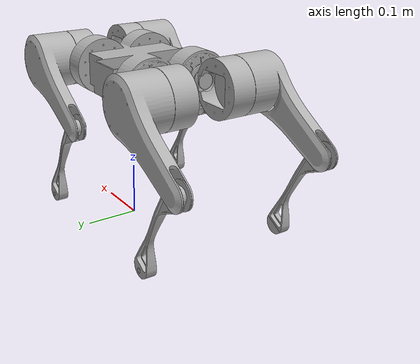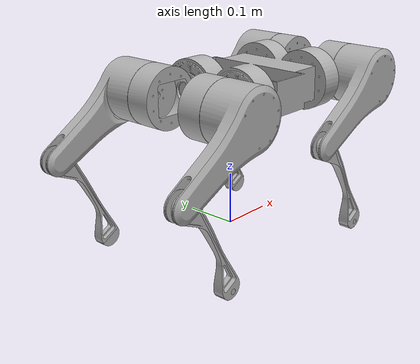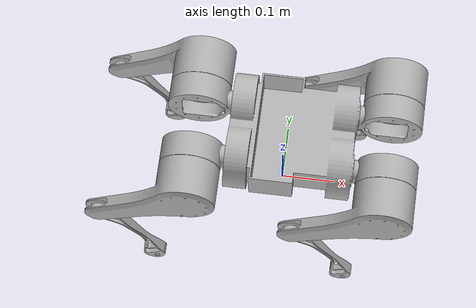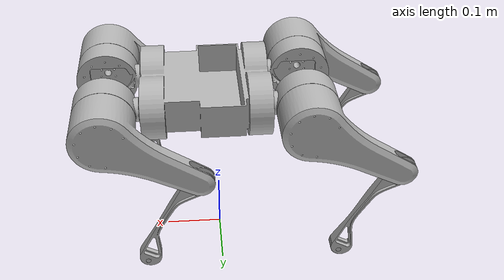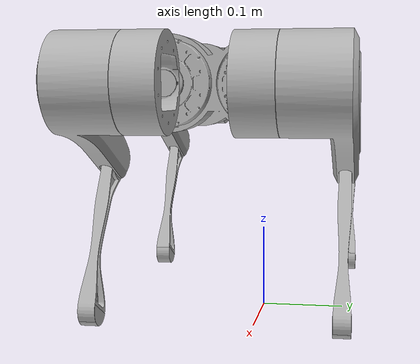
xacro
<?xml version="1.0" ?>
<robot name="vrka" xmlns:xacro="http://www.ros.org/wiki/xacro">

<xacro:include filename="$(find vrka_description)/urdf/materials.xacro" />
<xacro:include filename="$(find vrka_description)/urdf/vrka.trans" />
<xacro:include filename="$(find vrka_description)/urdf/vrka.gazebo" />

<!--BASE LINK-->
<link name="base_link">
  <inertial>
    <origin rpy="0 0 0" xyz="0.01682545300731218 -0.03969312406945759 0.27867633081286985"/>
    <mass value="2.379664751421723"/>
    <inertia ixx="0.011528" ixy="-3.2e-05" ixz="-0.000126" iyy="0.017554" iyz="4e-06" izz="0.024797"/>
  </inertial>
  <visual>
    <origin rpy="0 0 0" xyz="0 0 0"/>
    <geometry>
      <mesh filename="package://vrka_description/meshes/base_link.stl" scale="0.001 0.001 0.001"/>
    </geometry>
    <material name="silver"/>
  </visual>
  <collision>
    <origin rpy="0 0 0" xyz="0 0 0"/>
    <geometry>
      <mesh filename="package://vrka_description/meshes/base_link.stl" scale="0.001 0.001 0.001"/>
    </geometry>
  </collision>
</link>

<!--RIGHT FRONT TIBIA -->

<link name="front_right_lower_leg">
  <inertial>
    <origin rpy="0 0 0" xyz="0.053354897837989246 0.007000373104040586 -0.08200412719516437"/>
    <mass value="0.05278821495344609"/>
    <inertia ixx="0.000281" ixy="-0.0" ixz="0.000153" iyy="0.000374" iyz="0.0" izz="9.5e-05"/>
  </inertial>
  <visual>
    <origin rpy="0 0 0" xyz="-0.035455 0.192045 -0.188584"/>
    <geometry>
      <mesh filename="package://vrka_description/meshes/Right_front_tibia.stl" scale="0.001 0.001 0.001"/>
    </geometry>
    <material name="silver"/>
  </visual>
  <collision>
    <origin rpy="0 0 0" xyz="-0.035455 0.192045 -0.188584"/>
    <geometry>
      <mesh filename="package://vrka_description/meshes/Right_front_tibia.stl" scale="0.001 0.001 0.001"/>
    </geometry>
  </collision>
</link>

<joint name="motor_front_right_lower_leg" type="revolute">
  <origin rpy="0 0 0" xyz="-0.160214 -0.079 -0.0925"/>
  <parent link="front_right_upper_leg"/>
  <child link="front_right_lower_leg"/>
    <limit lower="-0.78" upper="0.78" effort="100" velocity="0.1"/>
  <dynamics damping="0.5"/>
  <axis xyz="0.0 1.0 0.0"/>
</joint>

<!--right front toe-->
<link name="front_right_toe">
  <inertial>
    <origin rpy="0 -2.1 0 " xyz="0.1 0.009  -0.18"/>
    <mass value="0.05278821495344609"/>
    <inertia ixx="4.99e-6" ixy="-0.0" ixz="0.00" iyy="3.99e-6" iyz="0.0" izz="1.99e-6"/>
  </inertial>
  <visual>
    <origin rpy="0 -2.100000 0" xyz="0.11268 -7.955e-3 -0.073584"/>
    <geometry>
      <mesh filename="package://vrka_description/meshes/toe_cap1.stl" scale="0.0001 0.0001 0.0001"/>
    </geometry>
    <material name="silver"/>
  </visual>
  <collision>
    <origin rpy="0 0 0" xyz="0 0 0"/>
    <geometry>
      <mesh filename="package://vrka_description/meshes/toe_cap1.stl" scale="0.0001 0.0001 0.0001"/>
    </geometry>
  </collision>
</link>

<joint name="front_right_leg_foot" type="revolute">
  <origin rpy="0 0 0" xyz="0 0 0"/>
  <parent link="front_right_lower_leg"/>
  <child link="front_right_toe"/>
  <axis xyz="-0.0 1.0 -0.0"/>
    <limit lower="0" upper="0" effort="100" velocity="0.1"/>
  <dynamics damping="0.5"/>
</joint>

<!--RIGHT FRONT FEMUR-->

<link name="front_right_upper_leg">
  <inertial>
    <origin rpy="0 0 0" xyz="-0.02476252170408491 -0.051129281827133444 -0.014293871741900166"/>
    <mass value="1.0856839376243592"/>
    <inertia ixx="0.002714" ixy="-0.000576" ixz="-0.001392" iyy="0.005076" iyz="-0.000333" izz="0.004321"/>
  </inertial>
  <visual>
    <origin rpy="0 0 0" xyz="-0.195669 0.113045 -0.281084"/>
    <geometry>
      <mesh filename="package://vrka_description/meshes/Right_front_femur.stl" scale="0.001 0.001 0.001"/>
    </geometry>
    <material name="silver"/>
  </visual>
  <collision>
    <origin rpy="0 0 0" xyz="-0.195669 0.113045 -0.281084"/>
    <geometry>
      <mesh filename="package://vrka_description/meshes/Right_front_femur.stl" scale="0.001 0.001 0.001"/>
    </geometry>
  </collision>
</link>

<joint name="motor_front_right_upper_leg" type="revolute">
  <origin rpy="0 0 0" xyz="0.055 -0.0185 0.0"/>
  <parent link="front_right_hip"/>
  <child link="front_right_upper_leg"/>
    <limit lower="-0.78" upper="0.78" effort="100" velocity="0.1"/>
  <dynamics damping="0.5"/>
  <axis xyz="0.0 1.0 0.0"/>
</joint>

<!--RIGHT FRONT SHOULDER -->
<link name="front_right_hip">
  <inertial>
    <origin rpy="0 0 0" xyz="0.055238677027354355 -0.003594806404584705 -2.752506777503605e-07"/>
    <mass value="0.29461843575635877"/>
    <inertia ixx="0.000442" ixy="-7e-06" ixz="0.0" iyy="0.000747" iyz="0.0" izz="0.000451"/>
  </inertial>
  <visual>
    <origin rpy="0 0 0" xyz="-0.140669 0.094545 -0.281084"/>
    <geometry>
      <mesh filename="package://vrka_description/meshes/Right_front_shoulder.stl" scale="0.001 0.001 0.001"/>
    </geometry>
    <material name="silver"/>
  </visual>
  <collision>
    <origin rpy="0 0 0" xyz="-0.140669 0.094545 -0.281084"/>
    <geometry>
      <mesh filename="package://vrka_description/meshes/Right_front_shoulder.stl" scale="0.001 0.001 0.001"/>
    </geometry>
  </collision>
</link>

<joint name="motor_front_right_hip" type="revolute">
  <origin rpy="0 0 0" xyz="0.140669 -0.094545 0.281084"/>
  <parent link="base_link"/>
  <child link="front_right_hip"/>
    <limit lower="-0.78" upper="0.78" effort="100" velocity="0.1"/>
  <dynamics damping="0.5"/>
  <axis xyz="1.0 -0.0 0.0"/>
</joint>

<!--LEFT FRONT TIBIA -->
<link name="front_left_lower_leg">
  <inertial>
    <origin rpy="0 0 0" xyz="0.05335571926429739 -0.007000189913617491 -0.08200338753311157"/>
    <mass value="0.052788214953446086"/>
    <inertia ixx="0.000281" ixy="-0.0" ixz="0.000153" iyy="0.000374" iyz="0.0" izz="9.5e-05"/>
  </inertial>
  <visual>
    <origin rpy="0 0 0" xyz="-0.035492 -0.110752 -0.18713"/>
    <geometry>
      <mesh filename="package://vrka_description/meshes/Left_front_tibia.stl" scale="0.001 0.001 0.001"/>
    </geometry>
    <material name="silver"/>
  </visual>
  <collision>
    <origin rpy="0 0 0" xyz="-0.035492 -0.110752 -0.18713"/>
    <geometry>
      <mesh filename="package://vrka_description/meshes/Left_front_tibia.stl" scale="0.001 0.001 0.001"/>
    </geometry>
  </collision>
</link>

<joint name="motor_front_left_lower_leg" type="revolute">
  <origin rpy="0 0 0" xyz="-0.160215 0.079 -0.0925"/>
  <parent link="front_left_upper_leg"/>
  <child link="front_left_lower_leg"/>
    <limit lower="-0.78" upper="0.78" effort="100" velocity="0.1"/>
  <dynamics damping="0.5"/>
  <axis xyz="0.0 -1.0 -0.0"/>
</joint>

<!--Left front toe-->
<link name="front_left_toe">
  <inertial>
    <origin rpy="0 -2.1 0 " xyz="0.1 -5.3e-3  -0.18"/>
    <mass value="0.05278821495344609"/>
    <inertia ixx="4.99e-6" ixy="-0.0" ixz="0.00" iyy="3.99e-6" iyz="0.0" izz="1.99e-6"/>
  </inertial>
  <visual>
    <origin rpy="0 -2.100000 0" xyz="0.11268 -0.02255 -0.073584"/>
    <geometry>
      <mesh filename="package://vrka_description/meshes/toe_cap1.stl" scale="0.0001 0.0001 0.0001"/>
    </geometry>
    <material name="silver"/>
  </visual>
  <collision>
    <origin rpy="0 0 0" xyz="0 0 0"/>
    <geometry>
      <mesh filename="package://vrka_description/meshes/toe_cap1.stl" scale="0.0001 0.0001 0.0001"/>
    </geometry>
  </collision>
</link>

<joint name="front_left_leg_foot" type="revolute">
  <origin rpy="0 0 0" xyz="0 0 0"/>
  <parent link="front_left_lower_leg"/>
  <child link="front_left_toe"/>
  <axis xyz="-0.0 1.0 -0.0"/>
    <limit lower="0" upper="0" effort="100" velocity="0.1"/>
  <dynamics damping="0.5"/>
</joint>

<!--LEFT FRONT FEMUR -->

<link name="front_left_upper_leg">
  <inertial>
    <origin rpy="0 0 0" xyz="-0.02475988057481357 0.05112942909052748 -0.014298015948625065"/>
    <mass value="1.0856839376243592"/>
    <inertia ixx="0.002714" ixy="0.000576" ixz="-0.001391" iyy="0.005076" iyz="0.000333" izz="0.004321"/>
  </inertial>
  <visual>
    <origin rpy="0 0 0" xyz="-0.195707 -0.031752 -0.27963"/>
    <geometry>
      <mesh filename="package://vrka_description/meshes/Left_front_femur.stl" scale="0.001 0.001 0.001"/>
    </geometry>
    <material name="silver"/>
  </visual>
  <collision>
    <origin rpy="0 0 0" xyz="-0.195707 -0.031752 -0.27963"/>
    <geometry>
      <mesh filename="package://vrka_description/meshes/Left_front_femur.stl" scale="0.001 0.001 0.001"/>
    </geometry>
  </collision>
</link>

<joint name="motor_front_left_upper_leg" type="revolute">
  <origin rpy="0 0 0" xyz="0.055 0.0185 0.0"/>
  <parent link="front_left_hip"/>
  <child link="front_left_upper_leg"/>
    <limit lower="-0.78" upper="0.78" effort="100" velocity="0.1"/>
  <dynamics damping="0.5"/>
  <axis xyz="-0.0 -1.0 -0.0"/>
</joint>

<!--LEFT FRONT SHOULDER-->

<link name="front_left_hip">
  <inertial>
    <origin rpy="0 0 0" xyz="0.05523849845367643 0.0035949536679779626 3.663911247731022e-07"/>
    <mass value="0.29461843575635877"/>
    <inertia ixx="0.000442" ixy="7e-06" ixz="-0.0" iyy="0.000747" iyz="0.0" izz="0.000451"/>
  </inertial>
  <visual>
    <origin rpy="0 0 0" xyz="-0.140707 -0.013252 -0.27963"/>
    <geometry>
      <mesh filename="package://vrka_description/meshes/Left_front_shoulder.stl" scale="0.001 0.001 0.001"/>
    </geometry>
    <material name="silver"/>
  </visual>
  <collision>
    <origin rpy="0 0 0" xyz="-0.140707 -0.013252 -0.27963"/>
    <geometry>
      <mesh filename="package://vrka_description/meshes/Left_front_shoulder.stl" scale="0.001 0.001 0.001"/>
    </geometry>
  </collision>
</link>

<joint name="motor_front_left_hip" type="revolute">
  <origin rpy="0 0 0" xyz="0.140707 0.013252 0.27963"/>
  <parent link="base_link"/>
  <child link="front_left_hip"/>
    <limit lower="-0.78" upper="0.78" effort="100" velocity="0.1"/>
  <dynamics damping="0.5"/>
  <axis xyz="1.0 0.0 0.0"/>
</joint>

<!--RIGHT BACK TIBIA-->

<link name="back_right_lower_leg">
  <inertial>
    <origin rpy="0 0 0" xyz="0.05335489783801062 0.0070003731040372275 -0.08200412719516668"/>
    <mass value="0.05278821495344609"/>
    <inertia ixx="0.000281" ixy="-0.0" ixz="0.000153" iyy="0.000374" iyz="0.0" izz="9.5e-05"/>
  </inertial>
  <visual>
    <origin rpy="0 0 0" xyz="0.316183 0.192045 -0.188584"/>
    <geometry>
      <mesh filename="package://vrka_description/meshes/Right_back_tibia.stl" scale="0.001 0.001 0.001"/>
    </geometry>
    <material name="silver"/>
  </visual>
  <collision>
    <origin rpy="0 0 0" xyz="0.316183 0.192045 -0.188584"/>
    <geometry>
      <mesh filename="package://vrka_description/meshes/Right_back_tibia.stl" scale="0.001 0.001 0.001"/>
    </geometry>
  </collision>
</link>

<joint name="motor_back_right_lower_leg" type="revolute">
  <origin rpy="0 0 0" xyz="-0.160214 -0.079 -0.0925"/>
  <parent link="back_right_upper_leg"/>
  <child link="back_right_lower_leg"/>
  <axis xyz="-0.0 1.0 -0.0"/>
    <limit lower="-0.78" upper="0.78" effort="100" velocity="0.1"/>
  <dynamics damping="0.5"/>
</joint>

<!--right back toe test -->
<link name="back_right_toe">
  <inertial>
    <origin rpy="0 -2.1 0 " xyz="0.1 0.009  -0.18"/>
    <mass value="0.05278821495344609"/>
    <inertia ixx="4.99e-6" ixy="-0.0" ixz="0.00" iyy="3.99e-6" iyz="0.0" izz="1.99e-6"/>
  </inertial>
  <visual>
    <origin rpy="0 -2.100000 0" xyz="0.113183 -7.955e-3 -0.073584"/>
    <geometry>
      <mesh filename="package://vrka_description/meshes/toe_cap1.stl" scale="0.0001 0.0001 0.0001"/>
    </geometry>
    <material name="silver"/>
  </visual>
  <collision>
    <origin rpy="0 0 0" xyz="0 0 0"/>
    <geometry>
      <mesh filename="package://vrka_description/meshes/toe_cap1.stl" scale="0.0001 0.0001 0.0001"/>
    </geometry>
  </collision>
</link>

<joint name="back_right_leg_foot" type="revolute">
  <origin rpy="0 0 0" xyz="0 0 0"/>
  <parent link="back_right_lower_leg"/>
  <child link="back_right_toe"/>
  <axis xyz="-0.0 1.0 -0.0"/>
    <limit lower="0" upper="0" effort="100" velocity="0.1"/>
  <dynamics damping="0.5"/>
</joint>

<!--RIGHT BACK FEMUR -->
<link name="back_right_upper_leg">
  <inertial>
    <origin rpy="0 0 0" xyz="-0.0247625217040503 -0.05112928182713197 -0.014293871741910102"/>
    <mass value="1.0856839376243592"/>
    <inertia ixx="0.002714" ixy="-0.000576" ixz="-0.001392" iyy="0.005076" iyz="-0.000333" izz="0.004321"/>
  </inertial>
  <visual>
    <origin rpy="0 0 0" xyz="0.155969 0.113045 -0.281084"/>
    <geometry>
      <mesh filename="package://vrka_description/meshes/Right_back_femur.stl" scale="0.001 0.001 0.001"/>
    </geometry>
    <material name="silver"/>
  </visual>
  <collision>
    <origin rpy="0 0 0" xyz="0.155969 0.113045 -0.281084"/>
    <geometry>
      <mesh filename="package://vrka_description/meshes/Right_back_femur.stl" scale="0.001 0.001 0.001"/>
    </geometry>
  </collision>
</link>

<joint name="motor_back_right_upper_leg" type="revolute">
  <origin rpy="0 0 0" xyz="-0.055 -0.0185 0.0"/>
  <parent link="back_right_hip"/>
  <child link="back_right_upper_leg"/>
    <limit lower="-0.78" upper="0.78" effort="100" velocity="0.1"/>
  <dynamics damping="0.5"/>
  <axis xyz="0.0 1.0 -0.0"/>
</joint>

<!--RIGHT BACK SHOULDER-->
<link name="back_right_hip">
  <inertial>
    <origin rpy="0 0 0" xyz="-0.055238140708366607 -0.0035948064045824013 -3.732709291659475e-07"/>
    <mass value="0.29461843575635877"/>
    <inertia ixx="0.000442" ixy="7e-06" ixz="0.0" iyy="0.000747" iyz="-0.0" izz="0.000451"/>
  </inertial>
  <visual>
    <origin rpy="0 0 0" xyz="0.100969 0.094545 -0.281084"/>
    <geometry>
      <mesh filename="package://vrka_description/meshes/Right_back_shoulder.stl" scale="0.001 0.001 0.001"/>
    </geometry>
    <material name="silver"/>
  </visual>
  <collision>
    <origin rpy="0 0 0" xyz="0.100969 0.094545 -0.281084"/>
    <geometry>
      <mesh filename="package://vrka_description/meshes/Right_back_shoulder.stl" scale="0.001 0.001 0.001"/>
    </geometry>
  </collision>
</link>

<joint name="motor_back_right_hip" type="revolute">
  <origin rpy="0 0 0" xyz="-0.100969 -0.094545 0.281084"/>
  <parent link="base_link"/>
  <child link="back_right_hip"/>
    <limit lower="-0.78" upper="0.78" effort="100" velocity="0.1"/>
  <dynamics damping="0.5"/>
  <axis xyz="1.0 0.0 0.0"/>
</joint>

<!--LEFT BACK TIBIA-->
<link name="back_left_lower_leg">
  <inertial>
    <origin rpy="0 0 0" xyz="0.053354897838008675 -0.006999626895962993 -0.08200412719516677"/>
    <mass value="0.05278821495344609"/>
    <inertia ixx="0.000281" ixy="-0.0" ixz="0.000153" iyy="0.000374" iyz="0.0" izz="9.5e-05"/>
  </inertial>
  <visual>
    <origin rpy="0 0 0" xyz="0.316263 -0.110955 -0.188584"/>
    <geometry>
      <mesh filename="package://vrka_description/meshes/Left_back_tibia.stl" scale="0.001 0.001 0.001"/>
    </geometry>
    <material name="silver"/>
  </visual>
  <collision>
    <origin rpy="0 0 0" xyz="0.316263 -0.110955 -0.188584"/>
    <geometry>
      <mesh filename="package://vrka_description/meshes/Left_back_tibia.stl" scale="0.001 0.001 0.001"/>
    </geometry>
  </collision>
</link>

<joint name="motor_back_left_lower_leg" type="revolute">
  <origin rpy="0 0 0" xyz="-0.160214 0.079 -0.0925"/>
  <parent link="back_left_upper_leg"/>
  <child link="back_left_lower_leg"/>
  <limit lower="-0.78" upper="0.78" effort="100" velocity="0.1"/>
  <dynamics damping="0.5"/>
  <axis xyz="0.0 -1.0 -0.0"/>
</joint>

<!--Left back toe-->
<link name="back_left_toe">
  <inertial>
    <origin rpy="0 -2.1 0 " xyz="0.1 -5.3e-3  -0.18"/>
    <mass value="0.05278821495344609"/>
    <inertia ixx="4.99e-6" ixy="-0.0" ixz="0.00" iyy="3.99e-6" iyz="0.0" izz="1.99e-6"/>
  </inertial>
  <visual>
    <origin rpy="0 -2.100000 0" xyz="0.113183 -0.02255 -0.073584"/>
    <geometry>
      <mesh filename="package://vrka_description/meshes/toe_cap1.stl" scale="0.0001 0.0001 0.0001"/>
    </geometry>
    <material name="silver"/>
  </visual>
  <collision>
    <origin rpy="0 0 0" xyz="0 0 0"/>
    <geometry>
      <mesh filename="package://vrka_description/meshes/toe_cap1.stl" scale="0.0001 0.0001 0.0001"/>
    </geometry>
  </collision>
</link>

<joint name="back_left_leg_foot" type="revolute">
  <origin rpy="0 0 0" xyz="0 0 0"/>
  <parent link="back_left_lower_leg"/>
  <child link="back_left_toe"/>
  <axis xyz="-0.0 1.0 -0.0"/>
    <limit lower="0" upper="0" effort="100" velocity="0.1"/>
  <dynamics damping="0.5"/>
</joint>

<!--LEFT BACK FEMUR-->

<link name="back_left_upper_leg">
  <inertial>
    <origin rpy="0 0 0" xyz="-0.024759702001102196 0.05112999210818306 -0.01429875561068078"/>
    <mass value="1.0856839376243592"/>
    <inertia ixx="0.002714" ixy="0.000576" ixz="-0.001391" iyy="0.005076" iyz="0.000333" izz="0.004321"/>
  </inertial>
  <visual>
    <origin rpy="0 0 0" xyz="0.156049 -0.031955 -0.281084"/>
    <geometry>
      <mesh filename="package://vrka_description/meshes/Left_back_femur.stl" scale="0.001 0.001 0.001"/>
    </geometry>
    <material name="silver"/>
  </visual>
  <collision>
    <origin rpy="0 0 0" xyz="0.156049 -0.031955 -0.281084"/>
    <geometry>
      <mesh filename="package://vrka_description/meshes/Left_back_femur.stl" scale="0.001 0.001 0.001"/>
    </geometry>
  </collision>
</link>

<joint name="motor_back_left_upper_leg" type="revolute">
  <origin rpy="0 0 0" xyz="-0.055 0.0185 0.0"/>
  <parent link="back_left_hip"/>
  <child link="back_left_upper_leg"/>
  <limit lower="-0.78" upper="0.78" effort="100" velocity="0.1"/>
  <dynamics damping="0.5"/>
  <axis xyz="0.0 -1.0 0.0"/>
</joint>

<!--LEFT BACK SHOULDER-->
<link name="back_left_hip">
  <inertial>
    <origin rpy="0 0 0" xyz="-0.055238140708366884 0.003595516685633909 -2.7525069190570406e-07"/>
    <mass value="0.29461843575635877"/>
    <inertia ixx="0.000442" ixy="-7e-06" ixz="-0.0" iyy="0.000747" iyz="-0.0" izz="0.000451"/>
  </inertial>
  <visual>
    <origin rpy="0 0 0" xyz="0.101049 -0.013455 -0.281084"/>
    <geometry>
      <mesh filename="package://vrka_description/meshes/Left_back_shoulder.stl" scale="0.001 0.001 0.001"/>
    </geometry>
    <material name="silver"/>
  </visual>
  <collision>
    <origin rpy="0 0 0" xyz="0.101049 -0.013455 -0.281084"/>
    <geometry>
      <mesh filename="package://vrka_description/meshes/Left_back_shoulder.stl" scale="0.001 0.001 0.001"/>
    </geometry>
  </collision>
</link>

<joint name="motor_back_left_hip" type="revolute">
  <origin rpy="0 0 0" xyz="-0.101049 0.013455 0.281084"/>
  <parent link="base_link"/>
  <child link="back_left_hip"/>
  <limit lower="-0.78" upper="0.78" effort="100" velocity="0.1"/>
  <dynamics damping="0.5"/>
  <axis xyz="1.0 0.0 0.0"/>
</joint>

</robot>

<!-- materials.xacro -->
<robot name="vrka" xmlns:xacro="http://www.ros.org/wiki/xacro" >

<material name="silver">
  <color rgba="0.700 0.700 0.700 1.000"/>
</material>

</robot>

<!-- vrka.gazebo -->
<robot name="vrka" xmlns:xacro="http://www.ros.org/wiki/xacro" >

<xacro:property name="body_color" value="Gazebo/Silver" />

<gazebo>
  <plugin filename="libgazebo_ros_control.so" name="control"/>
</gazebo>
<gazebo reference="base_link">
  <material>${body_color}</material>
  <mu1>0.2</mu1>
  <mu2>0.2</mu2>
  <selfCollide>true</selfCollide>
  <gravity>true</gravity>
</gazebo>

<gazebo reference="front_right_lower_leg">
  <material>${body_color}</material>
  <mu1>0.2</mu1>
  <mu2>0.2</mu2>
  <selfCollide>true</selfCollide>
</gazebo>

<gazebo reference="front_right_upper_leg">
  <material>${body_color}</material>
  <mu1>0.2</mu1>
  <mu2>0.2</mu2>
  <selfCollide>true</selfCollide>
</gazebo>

<gazebo reference="front_right_hip">
  <material>${body_color}</material>
  <mu1>0.2</mu1>
  <mu2>0.2</mu2>
  <selfCollide>true</selfCollide>
</gazebo>

<gazebo reference="front_left_lower_leg">
  <material>${body_color}</material>
  <mu1>0.2</mu1>
  <mu2>0.2</mu2>
  <selfCollide>true</selfCollide>
</gazebo>

<gazebo reference="front_left_upper_leg">
  <material>${body_color}</material>
  <mu1>0.2</mu1>
  <mu2>0.2</mu2>
  <selfCollide>true</selfCollide>
</gazebo>

<gazebo reference="front_left_hip">
  <material>${body_color}</material>
  <mu1>0.2</mu1>
  <mu2>0.2</mu2>
  <selfCollide>true</selfCollide>
</gazebo>

<gazebo reference="back_right_lower_leg">
  <material>${body_color}</material>
  <mu1>0.2</mu1>
  <mu2>0.2</mu2>
  <selfCollide>true</selfCollide>
</gazebo>

<gazebo reference="back_right_upper_leg">
  <material>${body_color}</material>
  <mu1>0.2</mu1>
  <mu2>0.2</mu2>
  <selfCollide>true</selfCollide>
</gazebo>

<gazebo reference="back_right_hip">
  <material>${body_color}</material>
  <mu1>0.2</mu1>
  <mu2>0.2</mu2>
  <selfCollide>true</selfCollide>
</gazebo>

<gazebo reference="back_left_lower_leg">
  <material>${body_color}</material>
  <mu1>0.2</mu1>
  <mu2>0.2</mu2>
  <selfCollide>true</selfCollide>
</gazebo>

<gazebo reference="back_left_upper_leg">
  <material>${body_color}</material>
  <mu1>0.2</mu1>
  <mu2>0.2</mu2>
  <selfCollide>true</selfCollide>
</gazebo>

<gazebo reference="back_left_hip">
  <material>${body_color}</material>
  <mu1>0.2</mu1>
  <mu2>0.2</mu2>
  <selfCollide>true</selfCollide>
</gazebo>
<!--TOES-->
<!--right back toe-->
<gazebo reference="back_right_toe">
  <material>${body_color}</material>
  <mu1>0.2</mu1>
  <mu2>0.2</mu2>
  <selfCollide>true</selfCollide>
</gazebo>

<!--left back toe-->
<gazebo reference="back_leftt_toe">
  <material>${body_color}</material>
  <mu1>0.2</mu1>
  <mu2>0.2</mu2>
  <selfCollide>true</selfCollide>
</gazebo>

<!--left front toe-->
<gazebo reference="front_left_toe">
  <material>${body_color}</material>
  <mu1>0.2</mu1>
  <mu2>0.2</mu2>
  <selfCollide>true</selfCollide>
</gazebo>

<!--right front toe-->
<gazebo reference="front_right_toe">
  <material>${body_color}</material>
  <mu1>0.2</mu1>
  <mu2>0.2</mu2>
  <selfCollide>true</selfCollide>
</gazebo>

</robot>
